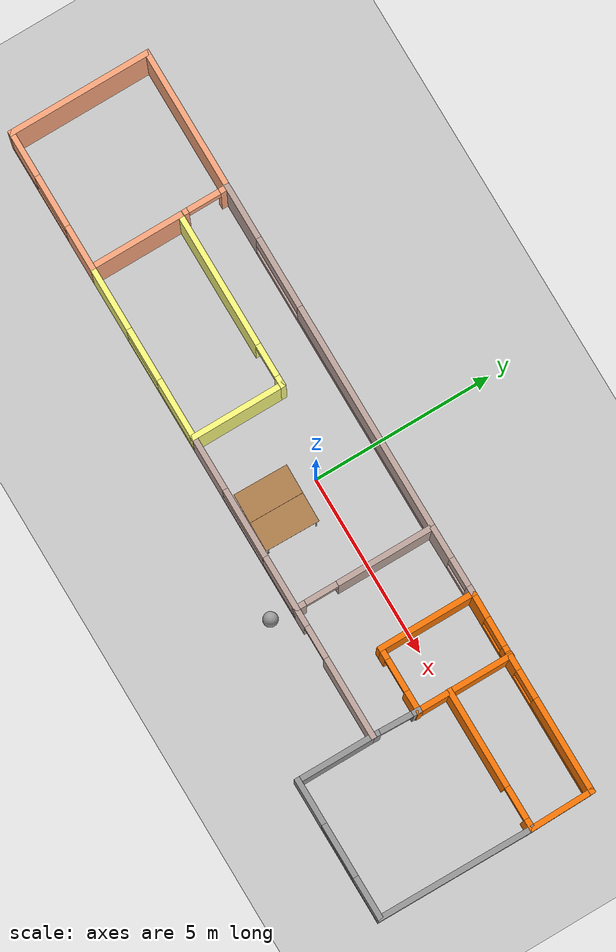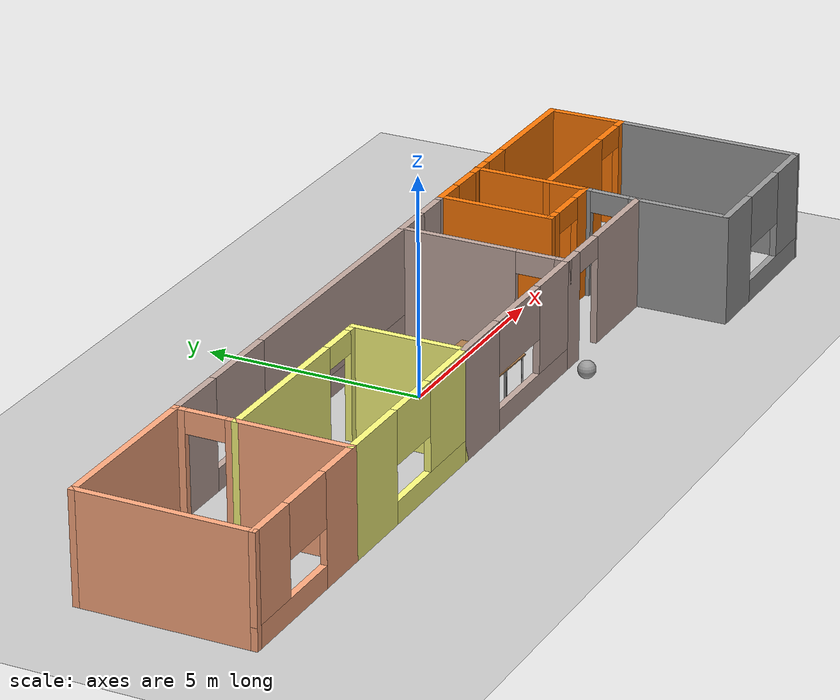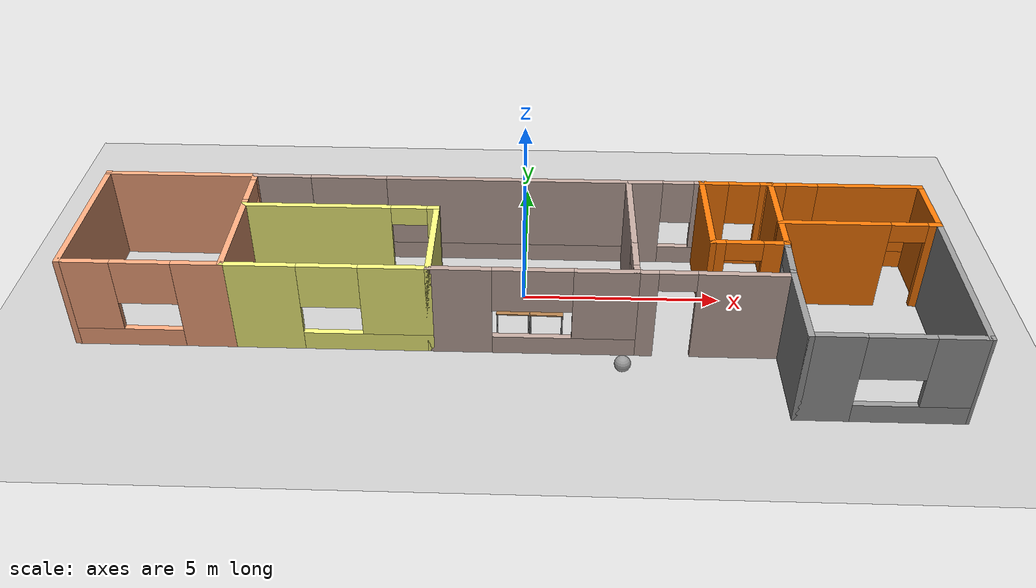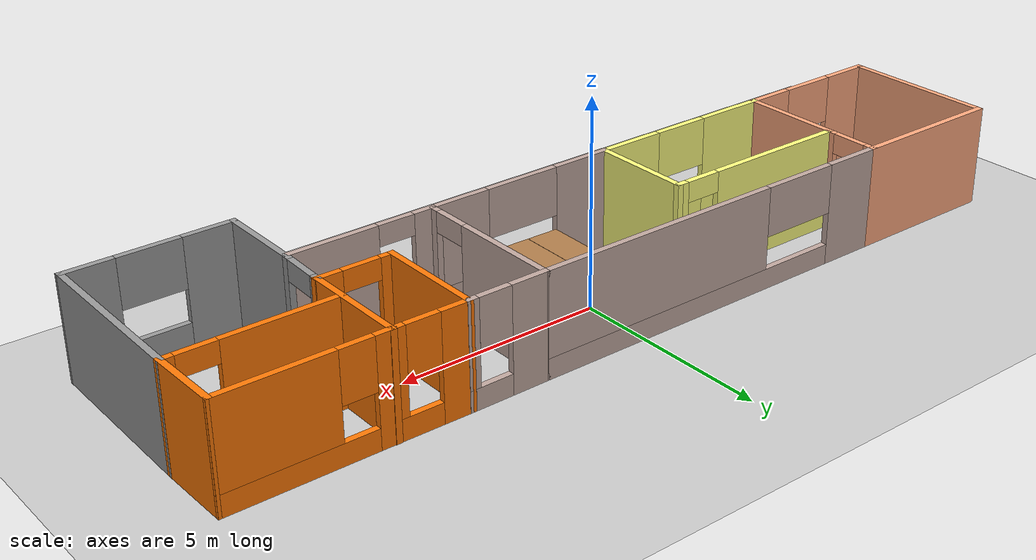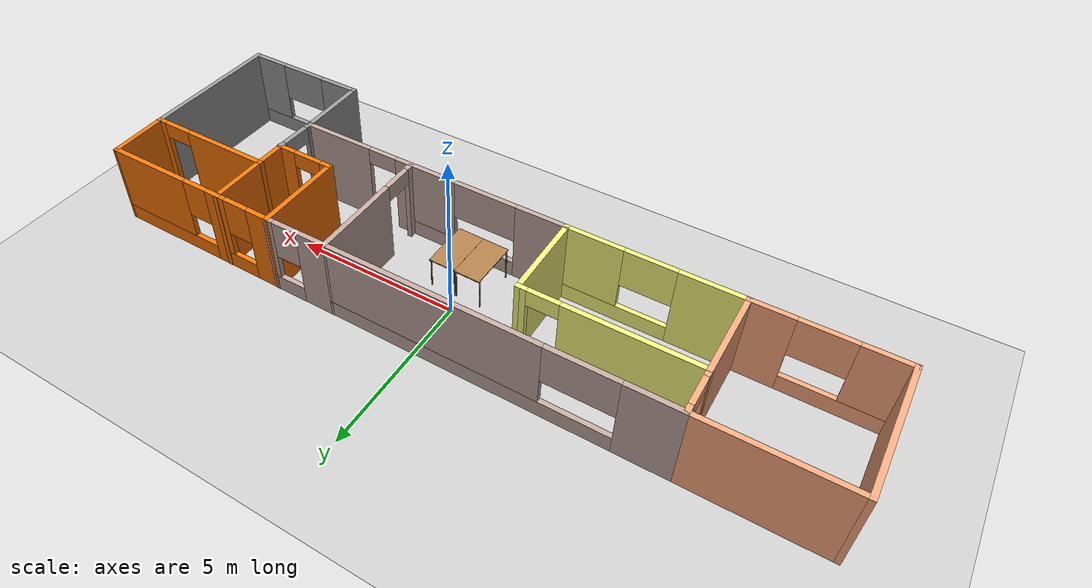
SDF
<sdf version="1.6">
 <world name="default">
  <model name="ground_plane">
   <static>1</static>
   <link name="link">
    <collision name="collision">
     <geometry><plane><normal>0 0 1</normal><size>100 100</size></plane></geometry>
     <surface><friction><ode><mu>100</mu><mu2>50</mu2></ode></friction></surface>
    </collision>
    <visual name="visual">
     <cast_shadows>0</cast_shadows>
     <geometry><plane><normal>0 0 1</normal><size>100 100</size></plane></geometry>
     <material>
      <script><uri>file://media/materials/scripts/gazebo.material</uri><name>Gazebo/Grey</name></script>
     </material>
    </visual>
   </link>
  </model>
  <model name="Building">
   <pose>-0.39074 -1.25242 0 0 -0 0</pose>
   <link name="Wall_0">
    <collision name="Wall_0_Collision">
     <geometry><box><size>4 0.15 2.5</size></box></geometry>
     <pose>0 0 1.25 0 -0 0</pose>
    </collision>
    <visual name="Wall_0_Visual">
     <pose>0 0 1.25 0 -0 0</pose>
     <geometry><box><size>4 0.15 2.5</size></box></geometry>
     <material>
      <script><uri>file://media/materials/scripts/gazebo.material</uri><name>Gazebo/Grey</name></script>
      <ambient>1 0.666667 0.498039 1</ambient>
     </material>
     <meta><layer>0</layer></meta>
    </visual>
    <pose>-8.59174 2.96861 0 0 -0 0</pose>
   </link>
   <link name="Wall_11">
    <collision name="Wall_11_Collision">
     <geometry><box><size>2.65 0.15 2.5</size></box></geometry>
     <pose>0 0 1.25 0 -0 0</pose>
    </collision>
    <visual name="Wall_11_Visual">
     <pose>0 0 1.25 0 -0 0</pose>
     <geometry><box><size>2.65 0.15 2.5</size></box></geometry>
     <material>
      <script><uri>file://media/materials/scripts/gazebo.material</uri><name>Gazebo/Grey</name></script>
      <ambient>1 0.666667 0.498039 1</ambient>
     </material>
     <meta><layer>0</layer></meta>
    </visual>
    <pose>-6.66674 0.368612 0 0 0 -1.5708</pose>
   </link>
   <link name="Wall_13">
    <pose>-4.24174 -0.881388 0 0 -0 0</pose>
    <visual name="Wall_13_Visual_0">
     <pose>-1.57798 0 1.25 0 -0 0</pose>
     <geometry><box><size>1.84404 0.15 2.5</size></box></geometry>
     <material>
      <script><uri>file://media/materials/scripts/gazebo.material</uri><name>Gazebo/Grey</name></script>
      <ambient>1 1 0.498039 1</ambient>
     </material>
     <meta><layer>0</layer></meta>
    </visual>
    <collision name="Wall_13_Collision_0">
     <geometry><box><size>1.84404 0.15 2.5</size></box></geometry>
     <pose>-1.57798 0 1.25 0 -0 0</pose>
    </collision>
    <visual name="Wall_13_Visual_1">
     <pose>0.922019 0 0.25 0 -0 0</pose>
     <geometry><box><size>3.15596 0.15 0.5</size></box></geometry>
     <material>
      <script><uri>file://media/materials/scripts/gazebo.material</uri><name>Gazebo/Grey</name></script>
      <ambient>1 1 0.498039 1</ambient>
     </material>
     <meta><layer>0</layer></meta>
    </visual>
    <collision name="Wall_13_Collision_1">
     <geometry><box><size>3.15596 0.15 0.5</size></box></geometry>
     <pose>0.922019 0 0.25 0 -0 0</pose>
    </collision>
    <visual name="Wall_13_Visual_2">
     <pose>1.64384 0 1.5 0 -0 0</pose>
     <geometry><box><size>1.71233 0.15 2</size></box></geometry>
     <material>
      <script><uri>file://media/materials/scripts/gazebo.material</uri><name>Gazebo/Grey</name></script>
      <ambient>1 1 0.498039 1</ambient>
     </material>
     <meta><layer>0</layer></meta>
    </visual>
    <collision name="Wall_13_Collision_2">
     <geometry><box><size>1.71233 0.15 2</size></box></geometry>
     <pose>1.64384 0 1.5 0 -0 0</pose>
    </collision>
    <visual name="Wall_13_Visual_3">
     <pose>0.065854 0 1.9 0 -0 0</pose>
     <geometry><box><size>1.44363 0.15 1.2</size></box></geometry>
     <material>
      <script><uri>file://media/materials/scripts/gazebo.material</uri><name>Gazebo/Grey</name></script>
      <ambient>1 1 0.498039 1</ambient>
     </material>
     <meta><layer>0</layer></meta>
    </visual>
    <collision name="Wall_13_Collision_3">
     <geometry><box><size>1.44363 0.15 1.2</size></box></geometry>
     <pose>0.065854 0 1.9 0 -0 0</pose>
    </collision>
   </link>
   <link name="Wall_14">
    <collision name="Wall_14_Collision">
     <geometry><box><size>2.65 0.15 2.5</size></box></geometry>
     <pose>0 0 1.25 0 -0 0</pose>
    </collision>
    <visual name="Wall_14_Visual">
     <pose>0 0 1.25 0 -0 0</pose>
     <geometry><box><size>2.65 0.15 2.5</size></box></geometry>
     <material>
      <script><uri>file://media/materials/scripts/gazebo.material</uri><name>Gazebo/Grey</name></script>
      <ambient>1 1 0.498039 1</ambient>
     </material>
     <meta><layer>0</layer></meta>
    </visual>
    <pose>-1.81674 0.368612 0 0 -0 1.5708</pose>
   </link>
   <link name="Wall_16">
    <pose>0.608263 -0.881388 0 0 -0 0</pose>
    <visual name="Wall_16_Visual_0">
     <pose>-1.72009 0 1.25 0 -0 0</pose>
     <geometry><box><size>1.55982 0.15 2.5</size></box></geometry>
     <material>
      <script><uri>file://media/materials/scripts/gazebo.material</uri><name>Gazebo/Grey</name></script>
      <ambient>0.760784 0.662745 0.627451 1</ambient>
     </material>
     <meta><layer>0</layer></meta>
    </visual>
    <collision name="Wall_16_Collision_0">
     <geometry><box><size>1.55982 0.15 2.5</size></box></geometry>
     <pose>-1.72009 0 1.25 0 -0 0</pose>
    </collision>
    <visual name="Wall_16_Visual_1">
     <pose>0.779909 0 0.25 0 -0 0</pose>
     <geometry><box><size>3.44018 0.15 0.5</size></box></geometry>
     <material>
      <script><uri>file://media/materials/scripts/gazebo.material</uri><name>Gazebo/Grey</name></script>
      <ambient>0.760784 0.662745 0.627451 1</ambient>
     </material>
     <meta><layer>0</layer></meta>
    </visual>
    <collision name="Wall_16_Collision_1">
     <geometry><box><size>3.44018 0.15 0.5</size></box></geometry>
     <pose>0.779909 0 0.25 0 -0 0</pose>
    </collision>
    <visual name="Wall_16_Visual_2">
     <pose>1.73303 0 1.5 0 -0 0</pose>
     <geometry><box><size>1.53394 0.15 2</size></box></geometry>
     <material>
      <script><uri>file://media/materials/scripts/gazebo.material</uri><name>Gazebo/Grey</name></script>
      <ambient>0.760784 0.662745 0.627451 1</ambient>
     </material>
     <meta><layer>0</layer></meta>
    </visual>
    <collision name="Wall_16_Collision_2">
     <geometry><box><size>1.53394 0.15 2</size></box></geometry>
     <pose>1.73303 0 1.5 0 -0 0</pose>
    </collision>
    <visual name="Wall_16_Visual_3">
     <pose>0.012941 0 1.9 0 -0 0</pose>
     <geometry><box><size>1.90625 0.15 1.2</size></box></geometry>
     <material>
      <script><uri>file://media/materials/scripts/gazebo.material</uri><name>Gazebo/Grey</name></script>
      <ambient>0.760784 0.662745 0.627451 1</ambient>
     </material>
     <meta><layer>0</layer></meta>
    </visual>
    <collision name="Wall_16_Collision_3">
     <geometry><box><size>1.90625 0.15 1.2</size></box></geometry>
     <pose>0.012941 0 1.9 0 -0 0</pose>
    </collision>
   </link>
   <link name="Wall_18">
    <pose>3.03326 1.04361 0 0 -0 1.5708</pose>
    <visual name="Wall_18_Visual_0">
     <pose>-1.83502 0 1.25 0 -0 0</pose>
     <geometry><box><size>0.329952 0.15 2.5</size></box></geometry>
     <material>
      <script><uri>file://media/materials/scripts/gazebo.material</uri><name>Gazebo/Grey</name></script>
      <ambient>0.760784 0.662745 0.627451 1</ambient>
     </material>
     <meta><layer>0</layer></meta>
    </visual>
    <collision name="Wall_18_Collision_0">
     <geometry><box><size>0.329952 0.15 2.5</size></box></geometry>
     <pose>-1.83502 0 1.25 0 -0 0</pose>
    </collision>
    <visual name="Wall_18_Visual_1">
     <pose>0.614976 0 1.25 0 -0 0</pose>
     <geometry><box><size>2.77005 0.15 2.5</size></box></geometry>
     <material>
      <script><uri>file://media/materials/scripts/gazebo.material</uri><name>Gazebo/Grey</name></script>
      <ambient>0.760784 0.662745 0.627451 1</ambient>
     </material>
     <meta><layer>0</layer></meta>
    </visual>
    <collision name="Wall_18_Collision_1">
     <geometry><box><size>2.77005 0.15 2.5</size></box></geometry>
     <pose>0.614976 0 1.25 0 -0 0</pose>
    </collision>
    <visual name="Wall_18_Visual_2">
     <pose>-1.22005 0 2.25 0 -0 0</pose>
     <geometry><box><size>0.9 0.15 0.5</size></box></geometry>
     <material>
      <script><uri>file://media/materials/scripts/gazebo.material</uri><name>Gazebo/Grey</name></script>
      <ambient>0.760784 0.662745 0.627451 1</ambient>
     </material>
     <meta><layer>0</layer></meta>
    </visual>
    <collision name="Wall_18_Collision_2">
     <geometry><box><size>0.9 0.15 0.5</size></box></geometry>
     <pose>-1.22005 0 2.25 0 -0 0</pose>
    </collision>
   </link>
   <link name="Wall_2">
    <pose>-8.59174 -0.881388 0 0 -0 3.14159</pose>
    <visual name="Wall_2_Visual_0">
     <pose>-1.37646 0 1.25 0 -0 0</pose>
     <geometry><box><size>1.24709 0.15 2.5</size></box></geometry>
     <material>
      <script><uri>file://media/materials/scripts/gazebo.material</uri><name>Gazebo/Grey</name></script>
      <ambient>1 0.666667 0.498039 1</ambient>
     </material>
     <meta><layer>0</layer></meta>
    </visual>
    <collision name="Wall_2_Collision_0">
     <geometry><box><size>1.24709 0.15 2.5</size></box></geometry>
     <pose>-1.37646 0 1.25 0 -0 0</pose>
    </collision>
    <visual name="Wall_2_Visual_1">
     <pose>0.623543 0 0.25 0 -0 0</pose>
     <geometry><box><size>2.75291 0.15 0.5</size></box></geometry>
     <material>
      <script><uri>file://media/materials/scripts/gazebo.material</uri><name>Gazebo/Grey</name></script>
      <ambient>1 0.666667 0.498039 1</ambient>
     </material>
     <meta><layer>0</layer></meta>
    </visual>
    <collision name="Wall_2_Collision_1">
     <geometry><box><size>2.75291 0.15 0.5</size></box></geometry>
     <pose>0.623543 0 0.25 0 -0 0</pose>
    </collision>
    <visual name="Wall_2_Visual_2">
     <pose>1.34536 0 1.5 0 -0 0</pose>
     <geometry><box><size>1.30928 0.15 2</size></box></geometry>
     <material>
      <script><uri>file://media/materials/scripts/gazebo.material</uri><name>Gazebo/Grey</name></script>
      <ambient>1 0.666667 0.498039 1</ambient>
     </material>
     <meta><layer>0</layer></meta>
    </visual>
    <collision name="Wall_2_Collision_2">
     <geometry><box><size>1.30928 0.15 2</size></box></geometry>
     <pose>1.34536 0 1.5 0 -0 0</pose>
    </collision>
    <visual name="Wall_2_Visual_3">
     <pose>-0.031096 0 1.9 0 -0 0</pose>
     <geometry><box><size>1.44363 0.15 1.2</size></box></geometry>
     <material>
      <script><uri>file://media/materials/scripts/gazebo.material</uri><name>Gazebo/Grey</name></script>
      <ambient>1 0.666667 0.498039 1</ambient>
     </material>
     <meta><layer>0</layer></meta>
    </visual>
    <collision name="Wall_2_Collision_3">
     <geometry><box><size>1.44363 0.15 1.2</size></box></geometry>
     <pose>-0.031096 0 1.9 0 -0 0</pose>
    </collision>
   </link>
   <link name="Wall_20">
    <pose>4.83326 -0.881388 0 0 -0 0</pose>
    <visual name="Wall_20_Visual_0">
     <pose>-1.58402 0 1.25 0 -0 0</pose>
     <geometry><box><size>0.581965 0.15 2.5</size></box></geometry>
     <material>
      <script><uri>file://media/materials/scripts/gazebo.material</uri><name>Gazebo/Grey</name></script>
      <ambient>0.760784 0.662745 0.627451 1</ambient>
     </material>
     <meta><layer>0</layer></meta>
    </visual>
    <collision name="Wall_20_Collision_0">
     <geometry><box><size>0.581965 0.15 2.5</size></box></geometry>
     <pose>-1.58402 0 1.25 0 -0 0</pose>
    </collision>
    <visual name="Wall_20_Visual_1">
     <pose>0.740982 0 1.25 0 -0 0</pose>
     <geometry><box><size>2.26803 0.15 2.5</size></box></geometry>
     <material>
      <script><uri>file://media/materials/scripts/gazebo.material</uri><name>Gazebo/Grey</name></script>
      <ambient>0.760784 0.662745 0.627451 1</ambient>
     </material>
     <meta><layer>0</layer></meta>
    </visual>
    <collision name="Wall_20_Collision_1">
     <geometry><box><size>2.26803 0.15 2.5</size></box></geometry>
     <pose>0.740982 0 1.25 0 -0 0</pose>
    </collision>
    <visual name="Wall_20_Visual_2">
     <pose>-0.843035 0 2.25 0 -0 0</pose>
     <geometry><box><size>0.9 0.15 0.5</size></box></geometry>
     <material>
      <script><uri>file://media/materials/scripts/gazebo.material</uri><name>Gazebo/Grey</name></script>
      <ambient>0.760784 0.662745 0.627451 1</ambient>
     </material>
     <meta><layer>0</layer></meta>
    </visual>
    <collision name="Wall_20_Collision_2">
     <geometry><box><size>0.9 0.15 0.5</size></box></geometry>
     <pose>-0.843035 0 2.25 0 -0 0</pose>
    </collision>
   </link>
   <link name="Wall_21">
    <collision name="Wall_21_Collision">
     <geometry><box><size>2.25 0.15 2.5</size></box></geometry>
     <pose>0 0 1.25 0 -0 0</pose>
    </collision>
    <visual name="Wall_21_Visual">
     <pose>0 0 1.25 0 -0 0</pose>
     <geometry><box><size>2.25 0.15 2.5</size></box></geometry>
     <material>
      <script><uri>file://media/materials/scripts/gazebo.material</uri><name>Gazebo/Grey</name></script>
      <ambient>0.52549 0.52549 0.52549 1</ambient>
     </material>
     <meta><layer>0</layer></meta>
    </visual>
    <pose>6.63326 -1.93139 0 0 0 -1.5708</pose>
   </link>
   <link name="Wall_22">
    <pose>8.55826 -2.98139 0 0 -0 0</pose>
    <visual name="Wall_22_Visual_0">
     <pose>-1.35198 0 1.25 0 -0 0</pose>
     <geometry><box><size>1.29604 0.15 2.5</size></box></geometry>
     <material>
      <script><uri>file://media/materials/scripts/gazebo.material</uri><name>Gazebo/Grey</name></script>
      <ambient>0.52549 0.52549 0.52549 1</ambient>
     </material>
     <meta><layer>0</layer></meta>
    </visual>
    <collision name="Wall_22_Collision_0">
     <geometry><box><size>1.29604 0.15 2.5</size></box></geometry>
     <pose>-1.35198 0 1.25 0 -0 0</pose>
    </collision>
    <visual name="Wall_22_Visual_1">
     <pose>0.648021 0 0.25 0 -0 0</pose>
     <geometry><box><size>2.70396 0.15 0.5</size></box></geometry>
     <material>
      <script><uri>file://media/materials/scripts/gazebo.material</uri><name>Gazebo/Grey</name></script>
      <ambient>0.52549 0.52549 0.52549 1</ambient>
     </material>
     <meta><layer>0</layer></meta>
    </visual>
    <collision name="Wall_22_Collision_1">
     <geometry><box><size>2.70396 0.15 0.5</size></box></geometry>
     <pose>0.648021 0 0.25 0 -0 0</pose>
    </collision>
    <visual name="Wall_22_Visual_2">
     <pose>1.38995 0 1.5 0 -0 0</pose>
     <geometry><box><size>1.2201 0.15 2</size></box></geometry>
     <material>
      <script><uri>file://media/materials/scripts/gazebo.material</uri><name>Gazebo/Grey</name></script>
      <ambient>0.52549 0.52549 0.52549 1</ambient>
     </material>
     <meta><layer>0</layer></meta>
    </visual>
    <collision name="Wall_22_Collision_2">
     <geometry><box><size>1.2201 0.15 2</size></box></geometry>
     <pose>1.38995 0 1.5 0 -0 0</pose>
    </collision>
    <visual name="Wall_22_Visual_3">
     <pose>0.037972 0 1.9 0 -0 0</pose>
     <geometry><box><size>1.48386 0.15 1.2</size></box></geometry>
     <material>
      <script><uri>file://media/materials/scripts/gazebo.material</uri><name>Gazebo/Grey</name></script>
      <ambient>0.52549 0.52549 0.52549 1</ambient>
     </material>
     <meta><layer>0</layer></meta>
    </visual>
    <collision name="Wall_22_Collision_3">
     <geometry><box><size>1.48386 0.15 1.2</size></box></geometry>
     <pose>0.037972 0 1.9 0 -0 0</pose>
    </collision>
   </link>
   <link name="Wall_29">
    <collision name="Wall_29_Collision">
     <geometry><box><size>2.75 0.15 2.5</size></box></geometry>
     <pose>0 0 1.25 0 -0 0</pose>
    </collision>
    <visual name="Wall_29_Visual">
     <pose>0 0 1.25 0 -0 0</pose>
     <geometry><box><size>2.75 0.15 2.5</size></box></geometry>
     <material>
      <script><uri>file://media/materials/scripts/gazebo.material</uri><name>Gazebo/Grey</name></script>
      <ambient>0.996078 0.47451 0.0196078 1</ambient>
     </material>
     <meta><layer>0</layer></meta>
    </visual>
    <pose>4.91545 1.68139 0 0 0 -1.5708</pose>
   </link>
   <link name="Wall_3">
    <collision name="Wall_3_Collision">
     <geometry><box><size>4 0.15 2.5</size></box></geometry>
     <pose>0 0 1.25 0 -0 0</pose>
    </collision>
    <visual name="Wall_3_Visual">
     <pose>0 0 1.25 0 -0 0</pose>
     <geometry><box><size>4 0.15 2.5</size></box></geometry>
     <material>
      <script><uri>file://media/materials/scripts/gazebo.material</uri><name>Gazebo/Grey</name></script>
      <ambient>1 0.666667 0.498039 1</ambient>
     </material>
     <meta><layer>0</layer></meta>
    </visual>
    <pose>-10.5167 1.04361 0 0 -0 1.5708</pose>
   </link>
   <link name="Wall_30">
    <pose>5.8029 0.381395 0 0 -0 0</pose>
    <visual name="Wall_30_Visual_0">
     <pose>-0.770642 0 1.25 0 -0 0</pose>
     <geometry><box><size>0.383617 0.15 2.5</size></box></geometry>
     <material>
      <script><uri>file://media/materials/scripts/gazebo.material</uri><name>Gazebo/Grey</name></script>
      <ambient>0.996078 0.47451 0.0196078 1</ambient>
     </material>
     <meta><layer>0</layer></meta>
    </visual>
    <collision name="Wall_30_Collision_0">
     <geometry><box><size>0.383617 0.15 2.5</size></box></geometry>
     <pose>-0.770642 0 1.25 0 -0 0</pose>
    </collision>
    <visual name="Wall_30_Visual_1">
     <pose>0.641808 0 1.25 0 -0 0</pose>
     <geometry><box><size>0.641284 0.15 2.5</size></box></geometry>
     <material>
      <script><uri>file://media/materials/scripts/gazebo.material</uri><name>Gazebo/Grey</name></script>
      <ambient>0.996078 0.47451 0.0196078 1</ambient>
     </material>
     <meta><layer>0</layer></meta>
    </visual>
    <collision name="Wall_30_Collision_1">
     <geometry><box><size>0.641284 0.15 2.5</size></box></geometry>
     <pose>0.641808 0 1.25 0 -0 0</pose>
    </collision>
    <visual name="Wall_30_Visual_2">
     <pose>-0.128834 0 2.25 0 -0 0</pose>
     <geometry><box><size>0.9 0.15 0.5</size></box></geometry>
     <material>
      <script><uri>file://media/materials/scripts/gazebo.material</uri><name>Gazebo/Grey</name></script>
      <ambient>0.996078 0.47451 0.0196078 1</ambient>
     </material>
     <meta><layer>0</layer></meta>
    </visual>
    <collision name="Wall_30_Collision_2">
     <geometry><box><size>0.9 0.15 0.5</size></box></geometry>
     <pose>-0.128834 0 2.25 0 -0 0</pose>
    </collision>
   </link>
   <link name="Wall_32">
    <pose>8.59033 1.27174 0 0 -0 0</pose>
    <visual name="Wall_32_Visual_0">
     <pose>-0.618641 0 1.25 0 -0 0</pose>
     <geometry><box><size>2.76272 0.15 2.5</size></box></geometry>
     <material>
      <script><uri>file://media/materials/scripts/gazebo.material</uri><name>Gazebo/Grey</name></script>
      <ambient>0.996078 0.47451 0.0196078 1</ambient>
     </material>
     <meta><layer>0</layer></meta>
    </visual>
    <collision name="Wall_32_Collision_0">
     <geometry><box><size>2.76272 0.15 2.5</size></box></geometry>
     <pose>-0.618641 0 1.25 0 -0 0</pose>
    </collision>
    <visual name="Wall_32_Visual_1">
     <pose>1.83136 0 1.25 0 -0 0</pose>
     <geometry><box><size>0.337282 0.15 2.5</size></box></geometry>
     <material>
      <script><uri>file://media/materials/scripts/gazebo.material</uri><name>Gazebo/Grey</name></script>
      <ambient>0.996078 0.47451 0.0196078 1</ambient>
     </material>
     <meta><layer>0</layer></meta>
    </visual>
    <collision name="Wall_32_Collision_1">
     <geometry><box><size>0.337282 0.15 2.5</size></box></geometry>
     <pose>1.83136 0 1.25 0 -0 0</pose>
    </collision>
    <visual name="Wall_32_Visual_2">
     <pose>1.21272 0 2.25 0 -0 0</pose>
     <geometry><box><size>0.9 0.15 0.5</size></box></geometry>
     <material>
      <script><uri>file://media/materials/scripts/gazebo.material</uri><name>Gazebo/Grey</name></script>
      <ambient>0.996078 0.47451 0.0196078 1</ambient>
     </material>
     <meta><layer>0</layer></meta>
    </visual>
    <collision name="Wall_32_Collision_2">
     <geometry><box><size>0.9 0.15 0.5</size></box></geometry>
     <pose>1.21272 0 2.25 0 -0 0</pose>
    </collision>
   </link>
   <link name="Wall_34">
    <pose>3.97436 2.975 0 0 -0 0.006791</pose>
    <visual name="Wall_34_Visual_0">
     <pose>-0.53739 0 1.25 0 -0 0</pose>
     <geometry><box><size>0.957452 0.15 2.5</size></box></geometry>
     <material>
      <script><uri>file://media/materials/scripts/gazebo.material</uri><name>Gazebo/Grey</name></script>
      <ambient>0.760784 0.662745 0.627451 1</ambient>
     </material>
     <meta><layer>0</layer></meta>
    </visual>
    <collision name="Wall_34_Collision_0">
     <geometry><box><size>0.957452 0.15 2.5</size></box></geometry>
     <pose>-0.53739 0 1.25 0 -0 0</pose>
    </collision>
    <visual name="Wall_34_Visual_1">
     <pose>0.478726 0 0.25 0 -0 0</pose>
     <geometry><box><size>1.07478 0.15 0.5</size></box></geometry>
     <material>
      <script><uri>file://media/materials/scripts/gazebo.material</uri><name>Gazebo/Grey</name></script>
      <ambient>0.760784 0.662745 0.627451 1</ambient>
     </material>
     <meta><layer>0</layer></meta>
    </visual>
    <collision name="Wall_34_Collision_1">
     <geometry><box><size>1.07478 0.15 0.5</size></box></geometry>
     <pose>0.478726 0 0.25 0 -0 0</pose>
    </collision>
    <visual name="Wall_34_Visual_2">
     <pose>0.878726 0 1.5 0 -0 0</pose>
     <geometry><box><size>0.27478 0.15 2</size></box></geometry>
     <material>
      <script><uri>file://media/materials/scripts/gazebo.material</uri><name>Gazebo/Grey</name></script>
      <ambient>0.760784 0.662745 0.627451 1</ambient>
     </material>
     <meta><layer>0</layer></meta>
    </visual>
    <collision name="Wall_34_Collision_2">
     <geometry><box><size>0.27478 0.15 2</size></box></geometry>
     <pose>0.878726 0 1.5 0 -0 0</pose>
    </collision>
    <visual name="Wall_34_Visual_3">
     <pose>0.341336 0 1.9 0 -0 0</pose>
     <geometry><box><size>0.8 0.15 1.2</size></box></geometry>
     <material>
      <script><uri>file://media/materials/scripts/gazebo.material</uri><name>Gazebo/Grey</name></script>
      <ambient>0.760784 0.662745 0.627451 1</ambient>
     </material>
     <meta><layer>0</layer></meta>
    </visual>
    <collision name="Wall_34_Collision_3">
     <geometry><box><size>0.8 0.15 1.2</size></box></geometry>
     <pose>0.341336 0 1.9 0 -0 0</pose>
    </collision>
   </link>
   <link name="Wall_35">
    <pose>5.77436 2.975 0 0 0 -0.007441</pose>
    <visual name="Wall_35_Visual_0">
     <pose>-0.551182 0 1.25 0 -0 0</pose>
     <geometry><box><size>0.765495 0.15 2.5</size></box></geometry>
     <material>
      <script><uri>file://media/materials/scripts/gazebo.material</uri><name>Gazebo/Grey</name></script>
      <ambient>0.996078 0.47451 0.0196078 1</ambient>
     </material>
     <meta><layer>0</layer></meta>
    </visual>
    <collision name="Wall_35_Collision_0">
     <geometry><box><size>0.765495 0.15 2.5</size></box></geometry>
     <pose>-0.551182 0 1.25 0 -0 0</pose>
    </collision>
    <visual name="Wall_35_Visual_1">
     <pose>0.382747 0 0.25 0 -0 0</pose>
     <geometry><box><size>1.10236 0.15 0.5</size></box></geometry>
     <material>
      <script><uri>file://media/materials/scripts/gazebo.material</uri><name>Gazebo/Grey</name></script>
      <ambient>0.996078 0.47451 0.0196078 1</ambient>
     </material>
     <meta><layer>0</layer></meta>
    </visual>
    <collision name="Wall_35_Collision_1">
     <geometry><box><size>1.10236 0.15 0.5</size></box></geometry>
     <pose>0.382747 0 0.25 0 -0 0</pose>
    </collision>
    <visual name="Wall_35_Visual_2">
     <pose>0.782747 0 1.5 0 -0 0</pose>
     <geometry><box><size>0.302364 0.15 2</size></box></geometry>
     <material>
      <script><uri>file://media/materials/scripts/gazebo.material</uri><name>Gazebo/Grey</name></script>
      <ambient>0.996078 0.47451 0.0196078 1</ambient>
     </material>
     <meta><layer>0</layer></meta>
    </visual>
    <collision name="Wall_35_Collision_2">
     <geometry><box><size>0.302364 0.15 2</size></box></geometry>
     <pose>0.782747 0 1.5 0 -0 0</pose>
    </collision>
    <visual name="Wall_35_Visual_3">
     <pose>0.231565 0 1.9 0 -0 0</pose>
     <geometry><box><size>0.8 0.15 1.2</size></box></geometry>
     <material>
      <script><uri>file://media/materials/scripts/gazebo.material</uri><name>Gazebo/Grey</name></script>
      <ambient>0.996078 0.47451 0.0196078 1</ambient>
     </material>
     <meta><layer>0</layer></meta>
    </visual>
    <collision name="Wall_35_Collision_3">
     <geometry><box><size>0.8 0.15 1.2</size></box></geometry>
     <pose>0.231565 0 1.9 0 -0 0</pose>
    </collision>
   </link>
   <link name="Wall_36">
    <pose>8.55826 2.96861 0 0 -0 0</pose>
    <visual name="Wall_36_Visual_0">
     <pose>-1.74224 0 1.25 0 -0 0</pose>
     <geometry><box><size>0.515525 0.15 2.5</size></box></geometry>
     <material>
      <script><uri>file://media/materials/scripts/gazebo.material</uri><name>Gazebo/Grey</name></script>
      <ambient>0.996078 0.47451 0.0196078 1</ambient>
     </material>
     <meta><layer>0</layer></meta>
    </visual>
    <collision name="Wall_36_Collision_0">
     <geometry><box><size>0.515525 0.15 2.5</size></box></geometry>
     <pose>-1.74224 0 1.25 0 -0 0</pose>
    </collision>
    <visual name="Wall_36_Visual_1">
     <pose>0.257763 0 0.25 0 -0 0</pose>
     <geometry><box><size>3.48448 0.15 0.5</size></box></geometry>
     <material>
      <script><uri>file://media/materials/scripts/gazebo.material</uri><name>Gazebo/Grey</name></script>
      <ambient>0.996078 0.47451 0.0196078 1</ambient>
     </material>
     <meta><layer>0</layer></meta>
    </visual>
    <collision name="Wall_36_Collision_1">
     <geometry><box><size>3.48448 0.15 0.5</size></box></geometry>
     <pose>0.257763 0 0.25 0 -0 0</pose>
    </collision>
    <visual name="Wall_36_Visual_2">
     <pose>0.657763 0 1.5 0 -0 0</pose>
     <geometry><box><size>2.68447 0.15 2</size></box></geometry>
     <material>
      <script><uri>file://media/materials/scripts/gazebo.material</uri><name>Gazebo/Grey</name></script>
      <ambient>0.996078 0.47451 0.0196078 1</ambient>
     </material>
     <meta><layer>0</layer></meta>
    </visual>
    <collision name="Wall_36_Collision_2">
     <geometry><box><size>2.68447 0.15 2</size></box></geometry>
     <pose>0.657763 0 1.5 0 -0 0</pose>
    </collision>
    <visual name="Wall_36_Visual_3">
     <pose>-1.08448 0 1.9 0 -0 0</pose>
     <geometry><box><size>0.8 0.15 1.2</size></box></geometry>
     <material>
      <script><uri>file://media/materials/scripts/gazebo.material</uri><name>Gazebo/Grey</name></script>
      <ambient>0.996078 0.47451 0.0196078 1</ambient>
     </material>
     <meta><layer>0</layer></meta>
    </visual>
    <collision name="Wall_36_Collision_3">
     <geometry><box><size>0.8 0.15 1.2</size></box></geometry>
     <pose>-1.08448 0 1.9 0 -0 0</pose>
    </collision>
   </link>
   <link name="Wall_38">
    <collision name="Wall_38_Collision">
     <geometry><box><size>2.75 0.15 2.5</size></box></geometry>
     <pose>0 0 1.25 0 -0 0</pose>
    </collision>
    <visual name="Wall_38_Visual">
     <pose>0 0 1.25 0 -0 0</pose>
     <geometry><box><size>2.75 0.15 2.5</size></box></geometry>
     <material>
      <script><uri>file://media/materials/scripts/gazebo.material</uri><name>Gazebo/Grey</name></script>
      <ambient>0.996078 0.47451 0.0196078 1</ambient>
     </material>
     <meta><layer>0</layer></meta>
    </visual>
    <pose>6.67286 1.68139 0 0 -0 1.5708</pose>
   </link>
   <link name="Wall_40">
    <collision name="Wall_40_Collision">
     <geometry><box><size>1.84717 0.15 2.5</size></box></geometry>
     <pose>0 0 1.25 0 -0 0</pose>
    </collision>
    <visual name="Wall_40_Visual">
     <pose>0 0 1.25 0 -0 0</pose>
     <geometry><box><size>1.84717 0.15 2.5</size></box></geometry>
     <material>
      <script><uri>file://media/materials/scripts/gazebo.material</uri><name>Gazebo/Grey</name></script>
      <ambient>0.996078 0.47451 0.0196078 1</ambient>
     </material>
     <meta><layer>0</layer></meta>
    </visual>
    <pose>10.4993 2.12018 0 0 -0 1.58969</pose>
   </link>
   <link name="Wall_42">
    <collision name="Wall_42_Collision">
     <geometry><box><size>4.40325 0.15 2.5</size></box></geometry>
     <pose>0 0 1.25 0 -0 0</pose>
    </collision>
    <visual name="Wall_42_Visual">
     <pose>0 0 1.25 0 -0 0</pose>
     <geometry><box><size>4.40325 0.15 2.5</size></box></geometry>
     <material>
      <script><uri>file://media/materials/scripts/gazebo.material</uri><name>Gazebo/Grey</name></script>
      <ambient>0.52549 0.52549 0.52549 1</ambient>
     </material>
     <meta><layer>0</layer></meta>
    </visual>
    <pose>10.4993 -0.854823 0 0 -0 1.56326</pose>
   </link>
   <link name="Wall_45">
    <pose>6.65306 -0.249996 0 0 -0 1.53945</pose>
    <visual name="Wall_45_Visual_0">
     <pose>-0.573288 0 1.25 0 -0 0</pose>
     <geometry><box><size>0.266828 0.15 2.5</size></box></geometry>
     <material>
      <script><uri>file://media/materials/scripts/gazebo.material</uri><name>Gazebo/Grey</name></script>
      <ambient>0.541176 0.541176 0.541176 1</ambient>
     </material>
     <meta><layer>0</layer></meta>
    </visual>
    <collision name="Wall_45_Collision_0">
     <geometry><box><size>0.266828 0.15 2.5</size></box></geometry>
     <pose>-0.573288 0 1.25 0 -0 0</pose>
    </collision>
    <visual name="Wall_45_Visual_1">
     <pose>0.583414 0 1.25 0 -0 0</pose>
     <geometry><box><size>0.246576 0.15 2.5</size></box></geometry>
     <material>
      <script><uri>file://media/materials/scripts/gazebo.material</uri><name>Gazebo/Grey</name></script>
      <ambient>0.541176 0.541176 0.541176 1</ambient>
     </material>
     <meta><layer>0</layer></meta>
    </visual>
    <collision name="Wall_45_Collision_1">
     <geometry><box><size>0.246576 0.15 2.5</size></box></geometry>
     <pose>0.583414 0 1.25 0 -0 0</pose>
    </collision>
    <visual name="Wall_45_Visual_2">
     <pose>0.010126 0 2.25 0 -0 0</pose>
     <geometry><box><size>0.9 0.15 0.5</size></box></geometry>
     <material>
      <script><uri>file://media/materials/scripts/gazebo.material</uri><name>Gazebo/Grey</name></script>
      <ambient>0.541176 0.541176 0.541176 1</ambient>
     </material>
     <meta><layer>0</layer></meta>
    </visual>
    <collision name="Wall_45_Collision_2">
     <geometry><box><size>0.9 0.15 0.5</size></box></geometry>
     <pose>0.010126 0 2.25 0 -0 0</pose>
    </collision>
   </link>
   <link name="Wall_5">
    <pose>-1.86674 2.96861 0 0 -0 0</pose>
    <visual name="Wall_5_Visual_0">
     <pose>-4.10383 0 1.25 0 -0 0</pose>
     <geometry><box><size>1.54233 0.15 2.5</size></box></geometry>
     <material>
      <script><uri>file://media/materials/scripts/gazebo.material</uri><name>Gazebo/Grey</name></script>
      <ambient>0.760784 0.662745 0.627451 1</ambient>
     </material>
     <meta><layer>0</layer></meta>
    </visual>
    <collision name="Wall_5_Collision_0">
     <geometry><box><size>1.54233 0.15 2.5</size></box></geometry>
     <pose>-4.10383 0 1.25 0 -0 0</pose>
    </collision>
    <visual name="Wall_5_Visual_1">
     <pose>0.771167 0 0.25 0 -0 0</pose>
     <geometry><box><size>8.20767 0.15 0.5</size></box></geometry>
     <material>
      <script><uri>file://media/materials/scripts/gazebo.material</uri><name>Gazebo/Grey</name></script>
      <ambient>0.760784 0.662745 0.627451 1</ambient>
     </material>
     <meta><layer>0</layer></meta>
    </visual>
    <collision name="Wall_5_Collision_1">
     <geometry><box><size>8.20767 0.15 0.5</size></box></geometry>
     <pose>0.771167 0 0.25 0 -0 0</pose>
    </collision>
    <visual name="Wall_5_Visual_2">
     <pose>1.75446 0 1.5 0 -0 0</pose>
     <geometry><box><size>6.24108 0.15 2</size></box></geometry>
     <material>
      <script><uri>file://media/materials/scripts/gazebo.material</uri><name>Gazebo/Grey</name></script>
      <ambient>0.760784 0.662745 0.627451 1</ambient>
     </material>
     <meta><layer>0</layer></meta>
    </visual>
    <collision name="Wall_5_Collision_2">
     <geometry><box><size>6.24108 0.15 2</size></box></geometry>
     <pose>1.75446 0 1.5 0 -0 0</pose>
    </collision>
    <visual name="Wall_5_Visual_3">
     <pose>-2.34937 0 1.9 0 -0 0</pose>
     <geometry><box><size>1.96659 0.15 1.2</size></box></geometry>
     <material>
      <script><uri>file://media/materials/scripts/gazebo.material</uri><name>Gazebo/Grey</name></script>
      <ambient>0.760784 0.662745 0.627451 1</ambient>
     </material>
     <meta><layer>0</layer></meta>
    </visual>
    <collision name="Wall_5_Collision_3">
     <geometry><box><size>1.96659 0.15 1.2</size></box></geometry>
     <pose>-2.34937 0 1.9 0 -0 0</pose>
    </collision>
   </link>
   <link name="Wall_7">
    <pose>-4.24174 1.61861 0 0 -0 3.14159</pose>
    <visual name="Wall_7_Visual_0">
     <pose>-2.3401 0 1.25 0 -0 0</pose>
     <geometry><box><size>0.319798 0.15 2.5</size></box></geometry>
     <material>
      <script><uri>file://media/materials/scripts/gazebo.material</uri><name>Gazebo/Grey</name></script>
      <ambient>1 1 0.498039 1</ambient>
     </material>
     <meta><layer>0</layer></meta>
    </visual>
    <collision name="Wall_7_Collision_0">
     <geometry><box><size>0.319798 0.15 2.5</size></box></geometry>
     <pose>-2.3401 0 1.25 0 -0 0</pose>
    </collision>
    <visual name="Wall_7_Visual_1">
     <pose>0.609899 0 1.25 0 -0 0</pose>
     <geometry><box><size>3.7802 0.15 2.5</size></box></geometry>
     <material>
      <script><uri>file://media/materials/scripts/gazebo.material</uri><name>Gazebo/Grey</name></script>
      <ambient>1 1 0.498039 1</ambient>
     </material>
     <meta><layer>0</layer></meta>
    </visual>
    <collision name="Wall_7_Collision_1">
     <geometry><box><size>3.7802 0.15 2.5</size></box></geometry>
     <pose>0.609899 0 1.25 0 -0 0</pose>
    </collision>
    <visual name="Wall_7_Visual_2">
     <pose>-1.7302 0 2.25 0 -0 0</pose>
     <geometry><box><size>0.9 0.15 0.5</size></box></geometry>
     <material>
      <script><uri>file://media/materials/scripts/gazebo.material</uri><name>Gazebo/Grey</name></script>
      <ambient>1 1 0.498039 1</ambient>
     </material>
     <meta><layer>0</layer></meta>
    </visual>
    <collision name="Wall_7_Collision_2">
     <geometry><box><size>0.9 0.15 0.5</size></box></geometry>
     <pose>-1.7302 0 2.25 0 -0 0</pose>
    </collision>
   </link>
   <link name="Wall_9">
    <pose>-6.66674 2.29361 0 0 -0 1.5708</pose>
    <visual name="Wall_9_Visual_0">
     <pose>-0.604431 0 1.25 0 -0 0</pose>
     <geometry><box><size>0.291139 0.15 2.5</size></box></geometry>
     <material>
      <script><uri>file://media/materials/scripts/gazebo.material</uri><name>Gazebo/Grey</name></script>
      <ambient>1 0.666667 0.498039 1</ambient>
     </material>
     <meta><layer>0</layer></meta>
    </visual>
    <collision name="Wall_9_Collision_0">
     <geometry><box><size>0.291139 0.15 2.5</size></box></geometry>
     <pose>-0.604431 0 1.25 0 -0 0</pose>
    </collision>
    <visual name="Wall_9_Visual_1">
     <pose>0.595569 0 1.25 0 -0 0</pose>
     <geometry><box><size>0.308861 0.15 2.5</size></box></geometry>
     <material>
      <script><uri>file://media/materials/scripts/gazebo.material</uri><name>Gazebo/Grey</name></script>
      <ambient>1 0.666667 0.498039 1</ambient>
     </material>
     <meta><layer>0</layer></meta>
    </visual>
    <collision name="Wall_9_Collision_1">
     <geometry><box><size>0.308861 0.15 2.5</size></box></geometry>
     <pose>0.595569 0 1.25 0 -0 0</pose>
    </collision>
    <visual name="Wall_9_Visual_2">
     <pose>-0.008861 0 2.25 0 -0 0</pose>
     <geometry><box><size>0.9 0.15 0.5</size></box></geometry>
     <material>
      <script><uri>file://media/materials/scripts/gazebo.material</uri><name>Gazebo/Grey</name></script>
      <ambient>1 0.666667 0.498039 1</ambient>
     </material>
     <meta><layer>0</layer></meta>
    </visual>
    <collision name="Wall_9_Collision_2">
     <geometry><box><size>0.9 0.15 0.5</size></box></geometry>
     <pose>-0.008861 0 2.25 0 -0 0</pose>
    </collision>
   </link>
   <static>1</static>
  </model>
  <model name="table">
   <static>1</static>
   <link name="link">
    <collision name="surface">
     <pose>0 0 1 0 -0 0</pose>
     <geometry><box><size>1.5 0.8 0.03</size></box></geometry>
     <surface><friction><ode><mu>0.6</mu><mu2>0.6</mu2></ode></friction></surface>
    </collision>
    <visual name="visual1">
     <pose>0 0 1 0 -0 0</pose>
     <geometry><box><size>1.5 0.8 0.03</size></box></geometry>
     <material>
      <script><uri>file://media/materials/scripts/gazebo.material</uri><name>Gazebo/Wood</name></script>
     </material>
    </visual>
    <collision name="front_left_leg">
     <pose>0.68 0.38 0.5 0 -0 0</pose>
     <geometry><cylinder><radius>0.02</radius><length>1</length></cylinder></geometry>
    </collision>
    <visual name="front_left_leg">
     <pose>0.68 0.38 0.5 0 -0 0</pose>
     <geometry><cylinder><radius>0.02</radius><length>1</length></cylinder></geometry>
     <material>
      <script><uri>file://media/materials/scripts/gazebo.material</uri><name>Gazebo/Grey</name></script>
     </material>
    </visual>
    <collision name="front_right_leg">
     <pose>0.68 -0.38 0.5 0 -0 0</pose>
     <geometry><cylinder><radius>0.02</radius><length>1</length></cylinder></geometry>
    </collision>
    <visual name="front_right_leg">
     <pose>0.68 -0.38 0.5 0 -0 0</pose>
     <geometry><cylinder><radius>0.02</radius><length>1</length></cylinder></geometry>
     <material>
      <script><uri>file://media/materials/scripts/gazebo.material</uri><name>Gazebo/Grey</name></script>
     </material>
    </visual>
    <collision name="back_right_leg">
     <pose>-0.68 -0.38 0.5 0 -0 0</pose>
     <geometry><cylinder><radius>0.02</radius><length>1</length></cylinder></geometry>
    </collision>
    <visual name="back_right_leg">
     <pose>-0.68 -0.38 0.5 0 -0 0</pose>
     <geometry><cylinder><radius>0.02</radius><length>1</length></cylinder></geometry>
     <material>
      <script><uri>file://media/materials/scripts/gazebo.material</uri><name>Gazebo/Grey</name></script>
     </material>
    </visual>
    <collision name="back_left_leg">
     <pose>-0.68 0.38 0.5 0 -0 0</pose>
     <geometry><cylinder><radius>0.02</radius><length>1</length></cylinder></geometry>
    </collision>
    <visual name="back_left_leg">
     <pose>-0.68 0.38 0.5 0 -0 0</pose>
     <geometry><cylinder><radius>0.02</radius><length>1</length></cylinder></geometry>
     <material>
      <script><uri>file://media/materials/scripts/gazebo.material</uri><name>Gazebo/Grey</name></script>
     </material>
    </visual>
   </link>
   <pose>-0.217973 -1.2251 0 0 -0 1.55366</pose>
  </model>
  <model name="table_clone">
   <static>1</static>
   <link name="link">
    <collision name="surface">
     <pose>0 0 1 0 -0 0</pose>
     <geometry><box><size>1.5 0.8 0.03</size></box></geometry>
     <surface><friction><ode><mu>0.6</mu><mu2>0.6</mu2></ode></friction></surface>
    </collision>
    <visual name="visual1">
     <pose>0 0 1 0 -0 0</pose>
     <geometry><box><size>1.5 0.8 0.03</size></box></geometry>
     <material>
      <script><uri>file://media/materials/scripts/gazebo.material</uri><name>Gazebo/Wood</name></script>
     </material>
    </visual>
    <collision name="front_left_leg">
     <pose>0.68 0.38 0.5 0 -0 0</pose>
     <geometry><cylinder><radius>0.02</radius><length>1</length></cylinder></geometry>
    </collision>
    <visual name="front_left_leg">
     <pose>0.68 0.38 0.5 0 -0 0</pose>
     <geometry><cylinder><radius>0.02</radius><length>1</length></cylinder></geometry>
     <material>
      <script><uri>file://media/materials/scripts/gazebo.material</uri><name>Gazebo/Grey</name></script>
     </material>
    </visual>
    <collision name="front_right_leg">
     <pose>0.68 -0.38 0.5 0 -0 0</pose>
     <geometry><cylinder><radius>0.02</radius><length>1</length></cylinder></geometry>
    </collision>
    <visual name="front_right_leg">
     <pose>0.68 -0.38 0.5 0 -0 0</pose>
     <geometry><cylinder><radius>0.02</radius><length>1</length></cylinder></geometry>
     <material>
      <script><uri>file://media/materials/scripts/gazebo.material</uri><name>Gazebo/Grey</name></script>
     </material>
    </visual>
    <collision name="back_right_leg">
     <pose>-0.68 -0.38 0.5 0 -0 0</pose>
     <geometry><cylinder><radius>0.02</radius><length>1</length></cylinder></geometry>
    </collision>
    <visual name="back_right_leg">
     <pose>-0.68 -0.38 0.5 0 -0 0</pose>
     <geometry><cylinder><radius>0.02</radius><length>1</length></cylinder></geometry>
     <material>
      <script><uri>file://media/materials/scripts/gazebo.material</uri><name>Gazebo/Grey</name></script>
     </material>
    </visual>
    <collision name="back_left_leg">
     <pose>-0.68 0.38 0.5 0 -0 0</pose>
     <geometry><cylinder><radius>0.02</radius><length>1</length></cylinder></geometry>
    </collision>
    <visual name="back_left_leg">
     <pose>-0.68 0.38 0.5 0 -0 0</pose>
     <geometry><cylinder><radius>0.02</radius><length>1</length></cylinder></geometry>
     <material>
      <script><uri>file://media/materials/scripts/gazebo.material</uri><name>Gazebo/Grey</name></script>
     </material>
    </visual>
   </link>
   <pose>0.584637 -1.24003 0 0 -0 1.55366</pose>
  </model>
  <model name="my_ball">
   <link name="link_0">
    <inertial>
     <mass>1</mass>
     <inertia><ixx>0.1</ixx><ixy>0</ixy><ixz>0</ixz><iyy>0.1</iyy><iyz>0</iyz><izz>0.1</izz></inertia>
    </inertial>
    <visual name="visual">
     <geometry><sphere><radius>0.2</radius></sphere></geometry>
     <material>
      <lighting>1</lighting>
      <script><uri>file://media/materials/scripts/gazebo.material</uri><name>Gazebo/Grey</name></script>
      <shader type="pixel"><normal_map>__default__</normal_map></shader>
      <ambient>1 1 1 1</ambient>
      <diffuse>1 1 1 1</diffuse>
      <specular>1 1 1 1</specular>
      <emissive>1 1 1 1</emissive>
     </material>
    </visual>
    <collision name="collision">
     <geometry><sphere><radius>0.2</radius></sphere></geometry>
     <surface>
      <friction>
       <ode><mu>1</mu><mu2>1</mu2><fdir1>0 0 0</fdir1><slip1>0</slip1><slip2>0</slip2></ode>
       <torsional>
        <coefficient>1</coefficient>
        <patch_radius>0</patch_radius>
        <surface_radius>0</surface_radius>
        <use_patch_radius>1</use_patch_radius>
        <ode><slip>0</slip></ode>
       </torsional>
      </friction>
      <bounce><restitution_coefficient>0</restitution_coefficient><threshold>1e+06</threshold></bounce>
      <contact>
       <collide_without_contact>0</collide_without_contact>
       <collide_without_contact_bitmask>1</collide_without_contact_bitmask>
       <collide_bitmask>1</collide_bitmask>
       <ode>
        <soft_cfm>0</soft_cfm>
        <soft_erp>0.2</soft_erp>
        <kp>1e+13</kp>
        <kd>1</kd>
        <max_vel>0.01</max_vel>
        <min_depth>0</min_depth>
       </ode>
       <bullet>
        <split_impulse>1</split_impulse>
        <split_impulse_penetration_threshold>-0.01</split_impulse_penetration_threshold>
        <soft_cfm>0</soft_cfm>
        <soft_erp>0.2</soft_erp>
        <kp>1e+13</kp>
        <kd>1</kd>
       </bullet>
      </contact>
     </surface>
    </collision>
   </link>
   <static>0</static>
   <pose>2.40748 -2.73585 0.2 0 -0 0</pose>
  </model>
 </world>
</sdf>
